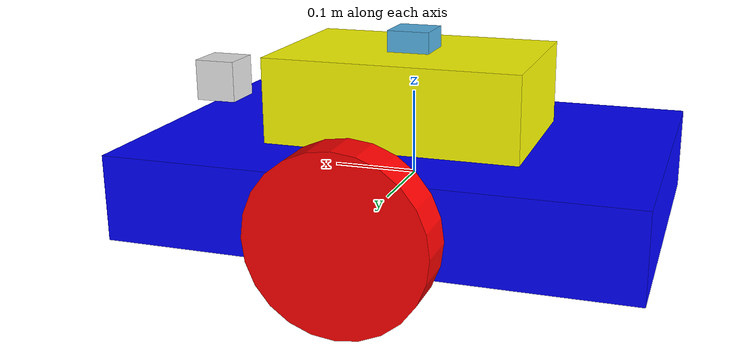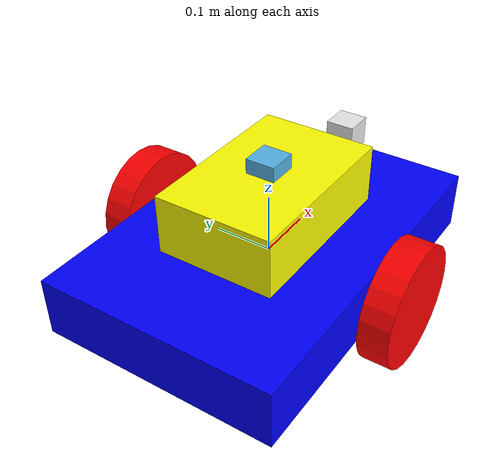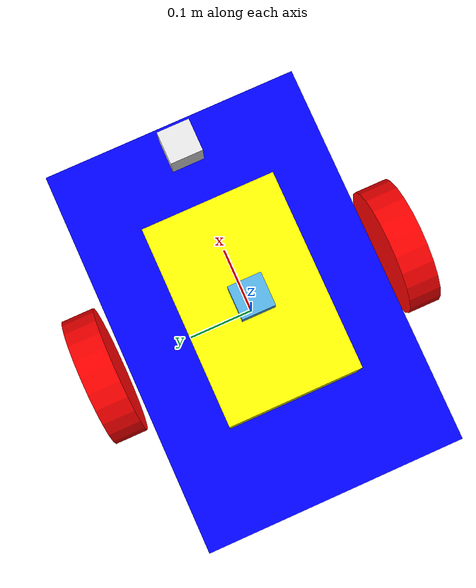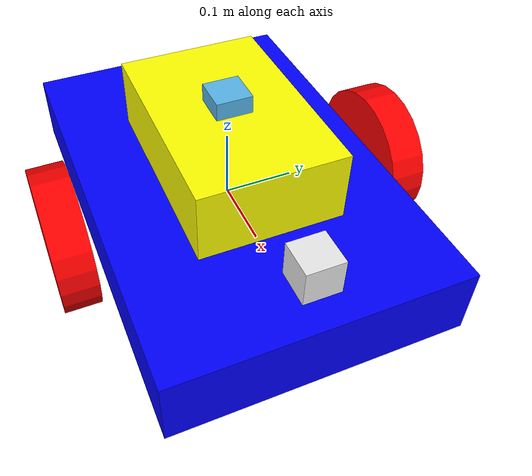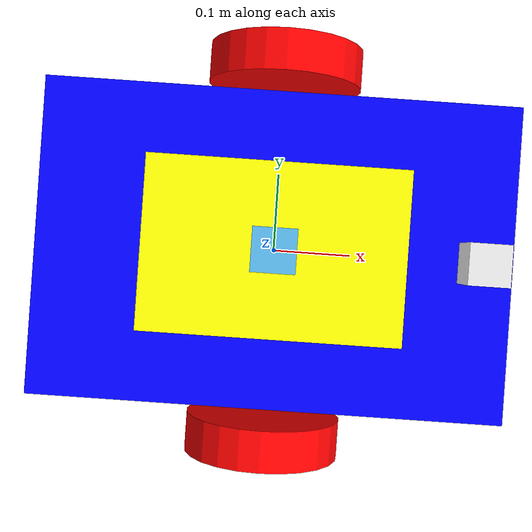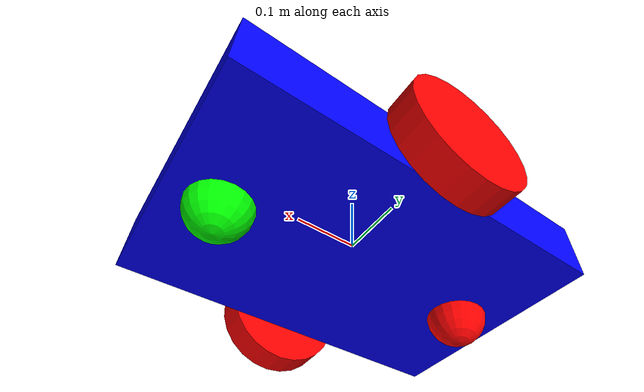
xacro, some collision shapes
<?xml version='1.0'?>

<robot name="diffrobot" xmlns:xacro="http://www.ros.org/wiki/xacro">

    <xacro:include filename="$(find diffrobot_description)/urdf/diffrobot.gazebo" /> <!-- include gazebo plugins file -->

    <link name="robot_footprint">   <!-- just dumy link before the base link-->
    </link>

    <joint name="robot_footprint_joint" type="fixed">
        <parent link="robot_footprint"/>
        <child link="base_link"/>
    </joint>

    <link name="base_link">
        <inertial>
            <origin xyz="0.0 0.0 0.0" rpy="0.0 0.0 0.0"/>
            <mass value="5.0"/>
            <inertia ixx="0.0" ixy="0.0" ixz="0.0" iyy="0.0" iyz="0.0" izz="0.0"/>
        </inertial>
        <visual name="base_link_visual">
            <origin xyz="0.0 0.0 0.0" rpy="0.0 0.0 0.0"/>
            <geometry>
                <box size="0.6 0.4 0.1"/>
            </geometry>
            <material name="">
                <color rgba="0.0 0.0 1.0 1.0"/>
                <texture filename=""/>
            </material>
        </visual>
        <collision>
            <origin xyz="0.0 0.0 0.0" rpy="0.0 0.0 0.0"/>
            <geometry>
                <box size="0.6 0.4 0.1"/>
            </geometry>
        </collision>
    </link>

    <link name="lidar_base_link">
        <inertial>
            <origin xyz="0.0 0.0 0.0" rpy="0.0 0.0 0.0"/>
            <mass value="5.0"/>
            <inertia ixx="0.0" ixy="0.0" ixz="0.0" iyy="0.0" iyz="0.0" izz="0.0"/>
        </inertial>
        <visual name="lidar_base_link_visual">
            <origin xyz="0.0 0.0 0.0" rpy="0.0 0.0 0.0"/>
            <geometry>
                <box size="0.3 0.2 0.1"/>
            </geometry>
            <material name="">
                <color rgba="1.0 1.0 0.0 1.0"/>
                <texture filename=""/>
            </material>
        </visual>
        <collision>
            <origin xyz="0.0 0.0 0.0" rpy="0.0 0.0 0.0"/>
            <geometry>
                <box size="0.3 0.2 0.1"/>
            </geometry>
        </collision>
    </link>

    <joint name="lidar_base_joint" type="fixed">  <!-- continous means that always rotate but revolute means it has a min and max limits-->
        <origin xyz="0.0 0.0 0.1" rpy="0.0 0.0 0.0" />
        <parent link="base_link"/>
        <child link="lidar_base_link"/>
    </joint>

    <link name="left_wheel">
        <inertial>
            <origin xyz="0.0 0.0 0.0" rpy="-1.5707 0.0 0.0"/>
            <mass value="5.0"/>
            <inertia ixx="0.1" ixy="0.0" ixz="0.0" iyy="0.1" iyz="0.0" izz="0.1"/>
        </inertial>
        <visual name="left_wheel_visual">
            <origin xyz="0.0 0.0 0.0" rpy="0.0 0.0 0.0"/>
            <geometry>
                <cylinder radius="0.1" length="0.05"/>
            </geometry>
            <material name="">
                <color rgba="1.0 0.0 0.0 1.0"/>
                <texture filename=""/>
            </material>
        </visual>
        <collision>
            <origin xyz="0.0 0.0 0.0" rpy="0.0 0.0 0.0"/>
            <geometry>
                <cylinder radius="0.1" length="0.05"/>
            </geometry>
        </collision>
    </link>

    <joint name="left_wheel_joint" type="continuous">  <!-- continous means that always rotate but revolute means it has a min and max limits-->
        <origin xyz="0.0 0.24 0.0" rpy="-1.5707 0.0 0.0" />
        <parent link="base_link"/>
        <child link="left_wheel"/>
        <axis xyz="0.0 0.0 1.0"/>    <!-- axis of rotation -->
    </joint>

    <link name="right_wheel">
        <inertial>
            <origin xyz="0.0 0.0 0.0" rpy="-1.5707 0.0 0.0"/>
            <mass value="5.0"/>
            <inertia ixx="0.1" ixy="0.0" ixz="0.0" iyy="0.1" iyz="0.0" izz="0.1"/>
        </inertial>
        <visual name="right_wheel_visual">
            <origin xyz="0.0 0.0 0.0" rpy="0.0 0.0 0.0"/>
            <geometry>
                <cylinder radius="0.1" length="0.05"/>
            </geometry>
            <material name="">
                <color rgba="1.0 0.0 0.0 1.0"/>
                <texture filename=""/>
            </material>
        </visual>
        <collision>
            <origin xyz="0.0 0.0 0.0" rpy="0.0 0.0 0.0"/>
            <geometry>
                <cylinder radius="0.1" length="0.05"/>
            </geometry>
        </collision>
    </link>

    <joint name="right_wheel_joint" type="continuous">  <!-- continous means that always rotate but revolute means it has a min and max limits-->
        <origin xyz="0.0 -0.24 0.0" rpy="-1.5707 0.0 0.0" />
        <parent link="base_link"/>
        <child link="right_wheel"/>
        <axis xyz="0.0 0.0 1.0"/>
    </joint>

    <link name="front_caster">
        <inertial>
            <origin xyz="0.0 0.0 0.0" rpy="0.0 0.0 0.0"/>
            <mass value="0.0"/>
            <inertia ixx="0.0" ixy="0.0" ixz="0.0" iyy="0.0" iyz="0.0" izz="0.0"/>
        </inertial>
        <visual name="front_caster_visual">
            <origin xyz="0.0 0.0 0.0" rpy="0.0 0.0 0.0"/>
            <geometry>
                <sphere radius="0.0499"/>
            </geometry>
            <material name="">
                <color rgba="0.0 1.0 0.0 1.0"/>
                <texture filename=""/>
            </material>
        </visual>
        <collision>
            <origin xyz="0.0 0.0 0.0" rpy="0.0 0.0 0.0"/>
            <geometry>
                <sphere radius="0.0499"/>
            </geometry>
        </collision>
    </link>

    <joint name="front_caster_joint" type="fixed">
        <origin xyz="0.22 0.0 -0.05" rpy="0.0 0.0 0.0" /> <!-- origin here from the parent, base link -->
        <parent link="base_link"/>
        <child link="front_caster"/>
    </joint>

    <link name="back_caster">
        <inertial>
            <origin xyz="0.0 0.0 0.0" rpy="0.0 0.0 0.0"/>
            <mass value="0.0"/>
            <inertia ixx="0.0" ixy="0.0" ixz="0.0" iyy="0.0" iyz="0.0" izz="0.0"/>
        </inertial>
        <visual name="back_caster_visual">
            <origin xyz="0.0 0.0 0.0" rpy="0.0 0.0 0.0"/>
            <geometry>
                <sphere radius="0.0499"/>
            </geometry>
            <material name="">
                <color rgba="1.0 0.0 0.0 1.0"/>
                <texture filename=""/>
            </material>
        </visual>
        <collision>
            <origin xyz="0.0 0.0 0.0" rpy="0.0 0.0 0.0"/>
            <geometry>
                <sphere radius="0.0499"/>
            </geometry>
        </collision>
    </link>

    <joint name="back_caster_joint" type="fixed">
        <origin xyz="-0.22 0.0 -0.05" rpy="0.0 0.0 0.0" /> <!-- origin here from the parent, base link -->
        <parent link="base_link"/>
        <child link="back_caster"/>
    </joint>

    <link name="camera_link">
      <inertial>
        <origin xyz="0.0 0.0 0.0" rpy="0.0 0.0 0.0"/>
        <mass value="0.1"/>
        <inertia ixx="0.0" ixy="0.0" ixz="0.0" iyy="0.0" iyz="0.0" izz="0.0"/>
      </inertial>
      <visual name="kinect_visual">
        <origin xyz="0.0 0.0 0.0" rpy="0.0 0.0 0.0"/>
        <geometry>
          <mesh filename="package://diffrobot_description/meshes/kinect.dae" />
        </geometry>
        <material name="white"/>
      </visual>
      <collision>
        <origin xyz="0.0 0.0 0.0" rpy="0.0 0.0 0.0"/>
        <geometry>
          <box size="0.05 0.05 0.05"/>
        </geometry>
      </collision>
    </link>

    <joint name="camera_joint" type="fixed">
        <origin xyz="0.25 0.0 0.1" rpy="0.0 0.0 0.0"/>
        <parent link="base_link"/>
        <child link="camera_link"/>
        <axis xyz="0.0 0.0 1.0"/>
    </joint>

    <link name="camera_link_optical">
    </link>

    <joint name="camera_optical_joint" type="fixed">
        <origin xyz="0 0 0" rpy="0 0 0"/>
        <parent link="camera_link"/>
        <child link="camera_link_optical"/>
    </joint>

    <link name="ouster_lidar_link">
        <inertial>
            <origin xyz="0.0 0.0 0.0" rpy="0.0 0.0 0.0"/>
            <mass value="0.1"/>
            <inertia ixx="0" ixy="0.0" ixz="0.0" iyy="0" iyz="0.0" izz="0"/>
        </inertial>
        <visual name="ouster_lidar_visual">
            <origin xyz="0.0 0.0 0.0" rpy="0.0 0.0 0.0"/>
            <geometry>
            <mesh filename="package://diffrobot_description/meshes/Ouster.stl" scale=".001 .001 .001"/>
            </geometry>
        </visual>
        <collision>
            <origin xyz="0.0 0.0 0.0" rpy="0.0 0.0 0.0"/>
            <geometry>
            <box size="0.05 0.05 0.05"/>
            </geometry>
        </collision>
    </link>

    <joint name="ouster_lidar_joint" type="fixed">
            <origin xyz="0.0 0.0 0.05" rpy="1.5707 0.0 0.0"/>
            <parent link="lidar_base_link"/>
            <child link="ouster_lidar_link"/>

    </joint>

    <link name="laser_data_link">
    </link>

    <joint name="laser_data_joint" type="fixed">
            <origin xyz="0 0 0" rpy="0 -1.5707 -1.5707"/>
            <parent link="ouster_lidar_link"/>
            <child link="laser_data_link"/>
    </joint>

</robot>
